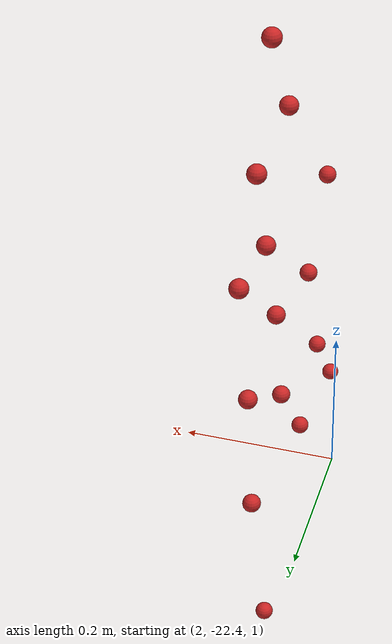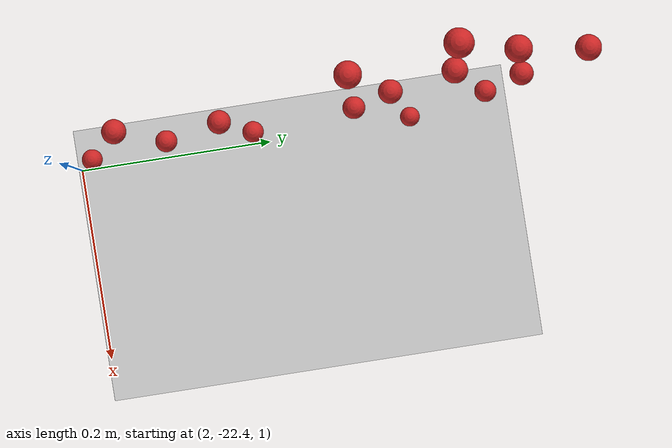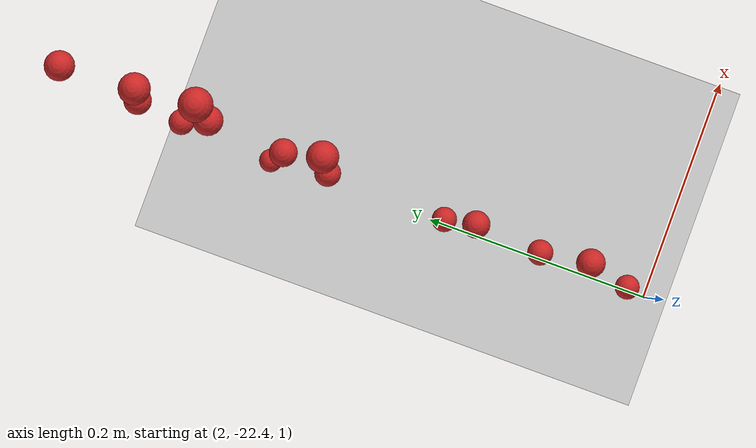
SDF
<sdf version="1.4">
 <world name="default">
  <model name="ground_plane">
   <static>1</static>
   <link name="link">
    <collision name="collision">
     <geometry><plane><normal>0 0 1</normal><size>100 100</size></plane></geometry>
     <surface><friction><ode><mu>100</mu><mu2>50</mu2></ode></friction></surface>
    </collision>
    <visual name="visual">
     <cast_shadows>0</cast_shadows>
     <geometry><plane><normal>0 0 1</normal><size>100 100</size></plane></geometry>
     <material>
      <script><uri>file://media/materials/scripts/gazebo.material</uri><name>Gazebo/Grey</name></script>
     </material>
    </visual>
    <velocity_decay><linear>0</linear><angular>0</angular></velocity_decay>
   </link>
  </model>
  <model name="apple727">
   <link name="my_apple">
    <inertial>
     <pose>2 0 0 0 -0 0</pose>
     <mass>1</mass>
     <inertia><ixx>1</ixx><ixy>0</ixy><ixz>0</ixz><iyy>1</iyy><iyz>0</iyz><izz>1</izz></inertia>
    </inertial>
    <collision name="my_apple_collision">
     <pose>2 0 1 0 -0 0</pose>
     <geometry><sphere><radius>0.01</radius></sphere></geometry>
    </collision>
    <visual name="my_apple_visual">
     <pose>2 0 1 0 -0 0</pose>
     <geometry><sphere><radius>0.01</radius></sphere></geometry>
     <material><script><name>Gazebo/Red</name><uri>__default__</uri></script></material>
    </visual>
    <gravity>0</gravity>
    <velocity_decay><linear>0</linear><angular>0</angular></velocity_decay>
   </link>
   <pose>0 -22.3711 0.173085 0 -0 0</pose>
   <static>0</static>
  </model>
  <model name="apple728">
   <link name="my_apple">
    <inertial>
     <pose>2 0 0 0 -0 0</pose>
     <mass>1</mass>
     <inertia><ixx>1</ixx><ixy>0</ixy><ixz>0</ixz><iyy>1</iyy><iyz>0</iyz><izz>1</izz></inertia>
    </inertial>
    <collision name="my_apple_collision">
     <pose>2 0 1 0 -0 0</pose>
     <geometry><sphere><radius>0.01</radius></sphere></geometry>
    </collision>
    <visual name="my_apple_visual">
     <pose>2 0 1 0 -0 0</pose>
     <geometry><sphere><radius>0.01</radius></sphere></geometry>
     <material><script><name>Gazebo/Red</name><uri>__default__</uri></script></material>
    </visual>
    <gravity>0</gravity>
    <velocity_decay><linear>0</linear><angular>0</angular></velocity_decay>
   </link>
   <pose>0 -22.2918 0.277563 0 -0 0</pose>
   <static>0</static>
  </model>
  <model name="apple729">
   <link name="my_apple">
    <inertial>
     <pose>2 0 0 0 -0 0</pose>
     <mass>1</mass>
     <inertia><ixx>1</ixx><ixy>0</ixy><ixz>0</ixz><iyy>1</iyy><iyz>0</iyz><izz>1</izz></inertia>
    </inertial>
    <collision name="my_apple_collision">
     <pose>2 0 1 0 -0 0</pose>
     <geometry><sphere><radius>0.01</radius></sphere></geometry>
    </collision>
    <visual name="my_apple_visual">
     <pose>2 0 1 0 -0 0</pose>
     <geometry><sphere><radius>0.01</radius></sphere></geometry>
     <material><script><name>Gazebo/Red</name><uri>__default__</uri></script></material>
    </visual>
    <gravity>0</gravity>
    <velocity_decay><linear>0</linear><angular>0</angular></velocity_decay>
   </link>
   <pose>0 -22.2374 0.42167 0 -0 0</pose>
   <static>0</static>
  </model>
  <model name="apple731">
   <link name="my_apple">
    <inertial>
     <pose>2 0 0 0 -0 0</pose>
     <mass>1</mass>
     <inertia><ixx>1</ixx><ixy>0</ixy><ixz>0</ixz><iyy>1</iyy><iyz>0</iyz><izz>1</izz></inertia>
    </inertial>
    <collision name="my_apple_collision">
     <pose>2 0 1 0 -0 0</pose>
     <geometry><sphere><radius>0.01</radius></sphere></geometry>
    </collision>
    <visual name="my_apple_visual">
     <pose>2 0 1 0 -0 0</pose>
     <geometry><sphere><radius>0.01</radius></sphere></geometry>
     <material><script><name>Gazebo/Red</name><uri>__default__</uri></script></material>
    </visual>
    <gravity>0</gravity>
    <velocity_decay><linear>0</linear><angular>0</angular></velocity_decay>
   </link>
   <pose>0 -22.1206 0.337002 0 -0 0</pose>
   <static>0</static>
  </model>
  <model name="apple734">
   <link name="my_apple">
    <inertial>
     <pose>2 0 0 0 -0 0</pose>
     <mass>1</mass>
     <inertia><ixx>1</ixx><ixy>0</ixy><ixz>0</ixz><iyy>1</iyy><iyz>0</iyz><izz>1</izz></inertia>
    </inertial>
    <collision name="my_apple_collision">
     <pose>2 0 1 0 -0 0</pose>
     <geometry><sphere><radius>0.01</radius></sphere></geometry>
    </collision>
    <visual name="my_apple_visual">
     <pose>2 0 1 0 -0 0</pose>
     <geometry><sphere><radius>0.01</radius></sphere></geometry>
     <material><script><name>Gazebo/Red</name><uri>__default__</uri></script></material>
    </visual>
    <gravity>0</gravity>
    <velocity_decay><linear>0</linear><angular>0</angular></velocity_decay>
   </link>
   <pose>0 -22.0505 0.586413 0 -0 0</pose>
   <static>0</static>
  </model>
  <model name="apple735">
   <link name="my_apple">
    <inertial>
     <pose>2 0 0 0 -0 0</pose>
     <mass>1</mass>
     <inertia><ixx>1</ixx><ixy>0</ixy><ixz>0</ixz><iyy>1</iyy><iyz>0</iyz><izz>1</izz></inertia>
    </inertial>
    <collision name="my_apple_collision">
     <pose>2 0 1 0 -0 0</pose>
     <geometry><sphere><radius>0.01</radius></sphere></geometry>
    </collision>
    <visual name="my_apple_visual">
     <pose>2 0 1 0 -0 0</pose>
     <geometry><sphere><radius>0.01</radius></sphere></geometry>
     <material><script><name>Gazebo/Red</name><uri>__default__</uri></script></material>
    </visual>
    <gravity>0</gravity>
    <velocity_decay><linear>0</linear><angular>0</angular></velocity_decay>
   </link>
   <pose>0 -21.9983 0.283015 0 -0 0</pose>
   <static>0</static>
  </model>
  <model name="apple737">
   <link name="my_apple">
    <inertial>
     <pose>2 0 0 0 -0 0</pose>
     <mass>1</mass>
     <inertia><ixx>1</ixx><ixy>0</ixy><ixz>0</ixz><iyy>1</iyy><iyz>0</iyz><izz>1</izz></inertia>
    </inertial>
    <collision name="my_apple_collision">
     <pose>2 0 1 0 -0 0</pose>
     <geometry><sphere><radius>0.01</radius></sphere></geometry>
    </collision>
    <visual name="my_apple_visual">
     <pose>2 0 1 0 -0 0</pose>
     <geometry><sphere><radius>0.01</radius></sphere></geometry>
     <material><script><name>Gazebo/Red</name><uri>__default__</uri></script></material>
    </visual>
    <gravity>0</gravity>
    <velocity_decay><linear>0</linear><angular>0</angular></velocity_decay>
   </link>
   <pose>0 -22.0139 0.693986 0 -0 0</pose>
   <static>0</static>
  </model>
  <model name="apple742">
   <link name="my_apple">
    <inertial>
     <pose>2 0 0 0 -0 0</pose>
     <mass>1</mass>
     <inertia><ixx>1</ixx><ixy>0</ixy><ixz>0</ixz><iyy>1</iyy><iyz>0</iyz><izz>1</izz></inertia>
    </inertial>
    <collision name="my_apple_collision">
     <pose>2 0 1 0 -0 0</pose>
     <geometry><sphere><radius>0.01</radius></sphere></geometry>
    </collision>
    <visual name="my_apple_visual">
     <pose>2 0 1 0 -0 0</pose>
     <geometry><sphere><radius>0.01</radius></sphere></geometry>
     <material><script><name>Gazebo/Red</name><uri>__default__</uri></script></material>
    </visual>
    <gravity>0</gravity>
    <velocity_decay><linear>0</linear><angular>0</angular></velocity_decay>
   </link>
   <pose>0 -22.3191 0.501383 0 -0 0</pose>
   <static>0</static>
  </model>
  <model name="apple749">
   <link name="my_apple">
    <inertial>
     <pose>2 0 0 0 -0 0</pose>
     <mass>1</mass>
     <inertia><ixx>1</ixx><ixy>0</ixy><ixz>0</ixz><iyy>1</iyy><iyz>0</iyz><izz>1</izz></inertia>
    </inertial>
    <collision name="my_apple_collision">
     <pose>2 0 1 0 -0 0</pose>
     <geometry><sphere><radius>0.01</radius></sphere></geometry>
    </collision>
    <visual name="my_apple_visual">
     <pose>2 0 1 0 -0 0</pose>
     <geometry><sphere><radius>0.01</radius></sphere></geometry>
     <material><script><name>Gazebo/Red</name><uri>__default__</uri></script></material>
    </visual>
    <gravity>0</gravity>
    <velocity_decay><linear>0</linear><angular>0</angular></velocity_decay>
   </link>
   <pose>0 -22.0549 0.059267 0 -0 0</pose>
   <static>0</static>
  </model>
  <model name="apple750">
   <link name="my_apple">
    <inertial>
     <pose>2 0 0 0 -0 0</pose>
     <mass>1</mass>
     <inertia><ixx>1</ixx><ixy>0</ixy><ixz>0</ixz><iyy>1</iyy><iyz>0</iyz><izz>1</izz></inertia>
    </inertial>
    <collision name="my_apple_collision">
     <pose>2 0 1 0 -0 0</pose>
     <geometry><sphere><radius>0.01</radius></sphere></geometry>
    </collision>
    <visual name="my_apple_visual">
     <pose>2 0 1 0 -0 0</pose>
     <geometry><sphere><radius>0.01</radius></sphere></geometry>
     <material><script><name>Gazebo/Red</name><uri>__default__</uri></script></material>
    </visual>
    <gravity>0</gravity>
    <velocity_decay><linear>0</linear><angular>0</angular></velocity_decay>
   </link>
   <pose>0 -21.951 0.604161 0 -0 0</pose>
   <static>0</static>
  </model>
  <model name="apple751">
   <link name="my_apple">
    <inertial>
     <pose>2 0 0 0 -0 0</pose>
     <mass>1</mass>
     <inertia><ixx>1</ixx><ixy>0</ixy><ixz>0</ixz><iyy>1</iyy><iyz>0</iyz><izz>1</izz></inertia>
    </inertial>
    <collision name="my_apple_collision">
     <pose>2 0 1 0 -0 0</pose>
     <geometry><sphere><radius>0.01</radius></sphere></geometry>
    </collision>
    <visual name="my_apple_visual">
     <pose>2 0 1 0 -0 0</pose>
     <geometry><sphere><radius>0.01</radius></sphere></geometry>
     <material><script><name>Gazebo/Red</name><uri>__default__</uri></script></material>
    </visual>
    <gravity>0</gravity>
    <velocity_decay><linear>0</linear><angular>0</angular></velocity_decay>
   </link>
   <pose>0 -21.983 0.441011 0 -0 0</pose>
   <static>0</static>
  </model>
  <model name="apple753">
   <link name="my_apple">
    <inertial>
     <pose>2 0 0 0 -0 0</pose>
     <mass>1</mass>
     <inertia><ixx>1</ixx><ixy>0</ixy><ixz>0</ixz><iyy>1</iyy><iyz>0</iyz><izz>1</izz></inertia>
    </inertial>
    <collision name="my_apple_collision">
     <pose>2 0 1 0 -0 0</pose>
     <geometry><sphere><radius>0.01</radius></sphere></geometry>
    </collision>
    <visual name="my_apple_visual">
     <pose>2 0 1 0 -0 0</pose>
     <geometry><sphere><radius>0.01</radius></sphere></geometry>
     <material><script><name>Gazebo/Red</name><uri>__default__</uri></script></material>
    </visual>
    <gravity>0</gravity>
    <velocity_decay><linear>0</linear><angular>0</angular></velocity_decay>
   </link>
   <pose>0 -22.2133 0.215309 0 -0 0</pose>
   <static>0</static>
  </model>
  <model name="apple763">
   <link name="my_apple">
    <inertial>
     <pose>2 0 0 0 -0 0</pose>
     <mass>1</mass>
     <inertia><ixx>1</ixx><ixy>0</ixy><ixz>0</ixz><iyy>1</iyy><iyz>0</iyz><izz>1</izz></inertia>
    </inertial>
    <collision name="my_apple_collision">
     <pose>2 0 1 0 -0 0</pose>
     <geometry><sphere><radius>0.01</radius></sphere></geometry>
    </collision>
    <visual name="my_apple_visual">
     <pose>2 0 1 0 -0 0</pose>
     <geometry><sphere><radius>0.01</radius></sphere></geometry>
     <material><script><name>Gazebo/Red</name><uri>__default__</uri></script></material>
    </visual>
    <gravity>0</gravity>
    <velocity_decay><linear>0</linear><angular>0</angular></velocity_decay>
   </link>
   <pose>0 -22.1352 0.698503 0 -0 0</pose>
   <static>0</static>
  </model>
  <model name="apple764">
   <link name="my_apple">
    <inertial>
     <pose>2 0 0 0 -0 0</pose>
     <mass>1</mass>
     <inertia><ixx>1</ixx><ixy>0</ixy><ixz>0</ixz><iyy>1</iyy><iyz>0</iyz><izz>1</izz></inertia>
    </inertial>
    <collision name="my_apple_collision">
     <pose>2 0 1 0 -0 0</pose>
     <geometry><sphere><radius>0.01</radius></sphere></geometry>
    </collision>
    <visual name="my_apple_visual">
     <pose>2 0 1 0 -0 0</pose>
     <geometry><sphere><radius>0.01</radius></sphere></geometry>
     <material><script><name>Gazebo/Red</name><uri>__default__</uri></script></material>
    </visual>
    <gravity>0</gravity>
    <velocity_decay><linear>0</linear><angular>0</angular></velocity_decay>
   </link>
   <pose>0 -22.0658 0.811651 0 -0 0</pose>
   <static>0</static>
  </model>
  <model name="apple766">
   <link name="my_apple">
    <inertial>
     <pose>2 0 0 0 -0 0</pose>
     <mass>1</mass>
     <inertia><ixx>1</ixx><ixy>0</ixy><ixz>0</ixz><iyy>1</iyy><iyz>0</iyz><izz>1</izz></inertia>
    </inertial>
    <collision name="my_apple_collision">
     <pose>2 0 1 0 -0 0</pose>
     <geometry><sphere><radius>0.01</radius></sphere></geometry>
    </collision>
    <visual name="my_apple_visual">
     <pose>2 0 1 0 -0 0</pose>
     <geometry><sphere><radius>0.01</radius></sphere></geometry>
     <material><script><name>Gazebo/Red</name><uri>__default__</uri></script></material>
    </visual>
    <gravity>0</gravity>
    <velocity_decay><linear>0</linear><angular>0</angular></velocity_decay>
   </link>
   <pose>0 -22.0942 0.467234 0 -0 0</pose>
   <static>0</static>
  </model>
 </world>
</sdf>
